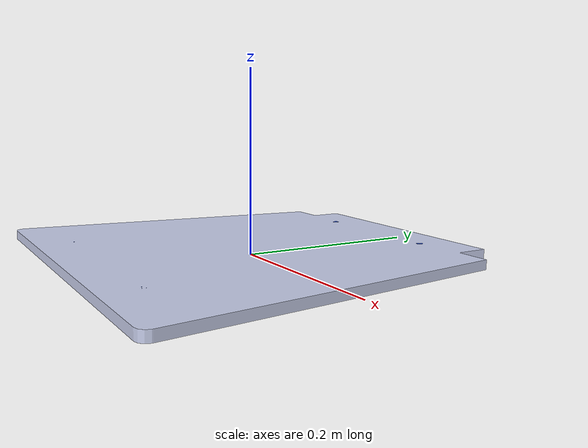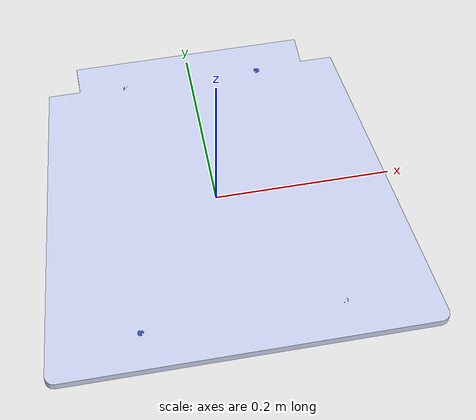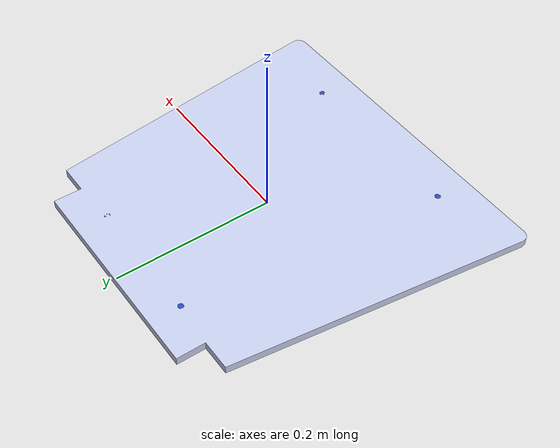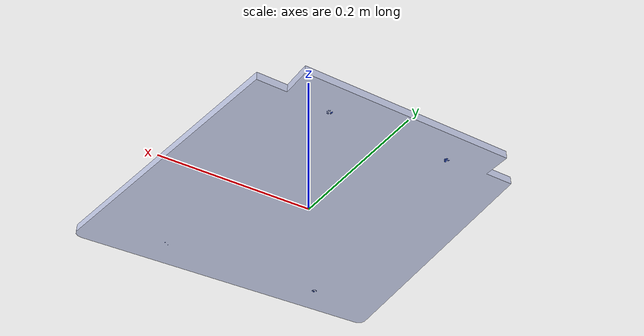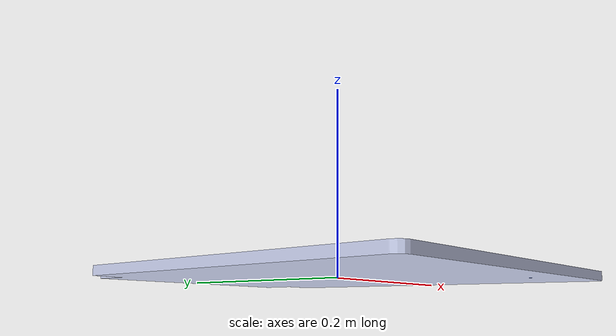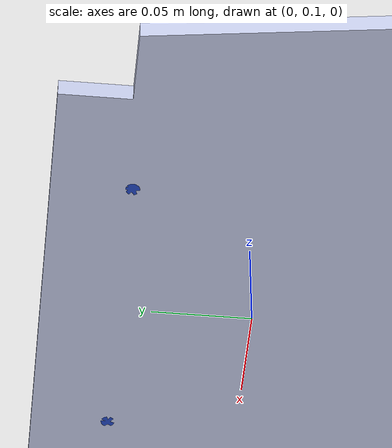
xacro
<?xml version="1.0" encoding="utf-8"?>
<robot name="part1.SLDPRT" xmlns:xacro="http://www.ros.org/wiki/xacro">

	<link name="part1.SLDPRT">
		<inertial>
			<origin xyz="-4.5591E-18 -0.012314 0.005" rpy="0 0 0"></origin>
			<mass value="1.556"></mass>
			<inertia ixx="0.021045" ixy="-1.1594E-18" ixz="6.9483E-20" iyy="0.019376" iyz="5.4332E-20" izz="0.040395"></inertia>
		</inertial>
		<visual>
			<origin xyz="0 0 0" rpy="0 0 0"></origin>
			<geometry>
				<mesh filename="package://object_description/urdfs/part1.SLDPRT/meshes/part1.SLDPRT.STL"></mesh>
			</geometry>
			<material name="">
				<color rgba="0.79216 0.81961 0.93333 1"></color>
			</material>
		</visual>
		<collision>
			<origin xyz="0 0 0" rpy="0 0 0"></origin>
			<geometry>
				<mesh filename="package://object_description/urdfs/part1.SLDPRT/meshes/part1.SLDPRT.STL"></mesh>
			</geometry>
		</collision>
	</link>
	<link name="part1 hole blocked 1">
		<visual>
			<origin xyz="0 0 0" rpy="0 0 0"></origin>
			<geometry>
				<cylinder length="0.01" radius="0.0035"></cylinder>
			</geometry>
		</visual>
	</link>
	<link name="part1 hole blocked 2">
		<visual>
			<origin xyz="0 0 0" rpy="0 0 0"></origin>
			<geometry>
				<cylinder length="0.01" radius="0.0035"></cylinder>
			</geometry>
		</visual>
	</link>
	<link name="part1 hole blocked 3">
		<visual>
			<origin xyz="0 0 0" rpy="0 0 0"></origin>
			<geometry>
				<cylinder length="0.01" radius="0.0035"></cylinder>
			</geometry>
		</visual>
	</link>
	<link name="part1 hole blocked 4">
		<visual>
			<origin xyz="0 0 0" rpy="0 0 0"></origin>
			<geometry>
				<cylinder length="0.01" radius="0.0035"></cylinder>
			</geometry>
		</visual>
	</link>
	<joint name="part1 hole blocked 1 joint" type="fixed">
		<origin xyz="-0.079 0.16577 0.005" rpy="0.0 0.0 0.0"></origin>
		<parent link="part1.SLDPRT"></parent>
		<child link="part1 hole blocked 1"></child>
	</joint>
	<joint name="part1 hole blocked 2 joint" type="fixed">
		<origin xyz="0.079 0.16577 0.005" rpy="0.0 0.0 0.0"></origin>
		<parent link="part1.SLDPRT"></parent>
		<child link="part1 hole blocked 2"></child>
	</joint>
	<joint name="part1 hole blocked 3 joint" type="fixed">
		<origin xyz="-0.111 -0.16161 0.005" rpy="0.0 0.0 0.0"></origin>
		<parent link="part1.SLDPRT"></parent>
		<child link="part1 hole blocked 3"></child>
	</joint>
	<joint name="part1 hole blocked 4 joint" type="fixed">
		<origin xyz="0.111 -0.16161 0.005" rpy="0.0 0.0 0.0"></origin>
		<parent link="part1.SLDPRT"></parent>
		<child link="part1 hole blocked 4"></child>
	</joint>
	<gazebo reference="part1 hole blocked 1">
		<material>Gazebo/BlueTransparent</material>
	</gazebo>
	<gazebo reference="part1 hole blocked 2">
		<material>Gazebo/BlueTransparent</material>
	</gazebo>
	<gazebo reference="part1 hole blocked 3">
		<material>Gazebo/BlueTransparent</material>
	</gazebo>
	<gazebo reference="part1 hole blocked 4">
		<material>Gazebo/BlueTransparent</material>
	</gazebo>
</robot>
